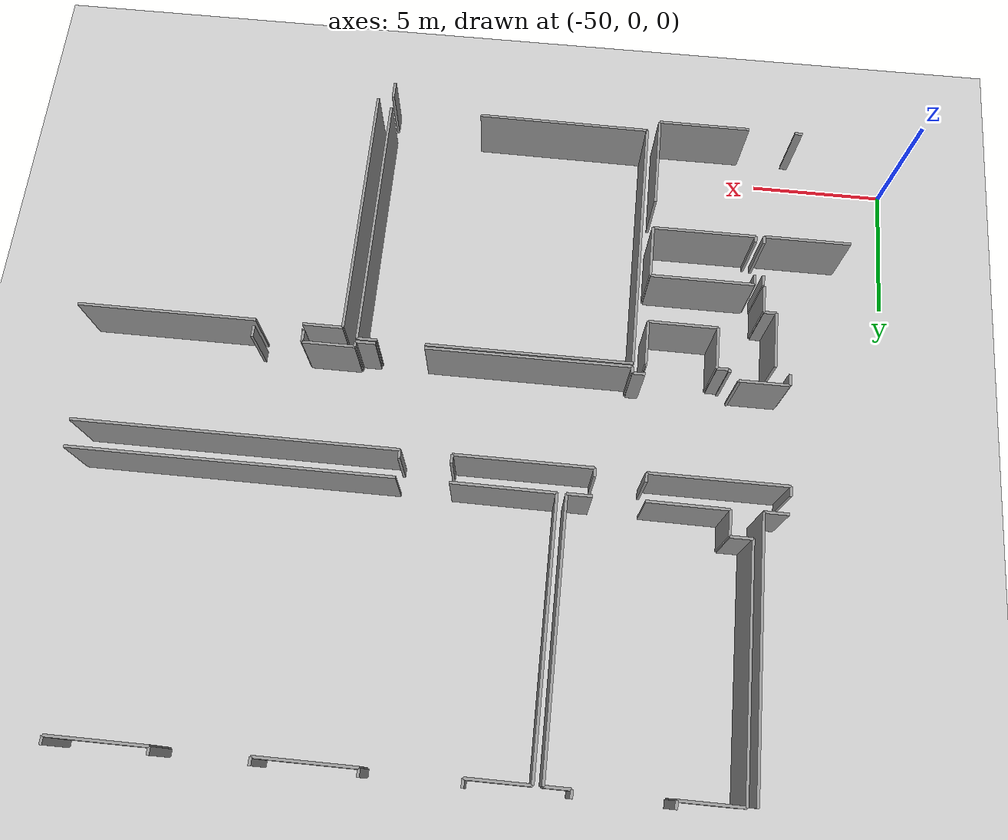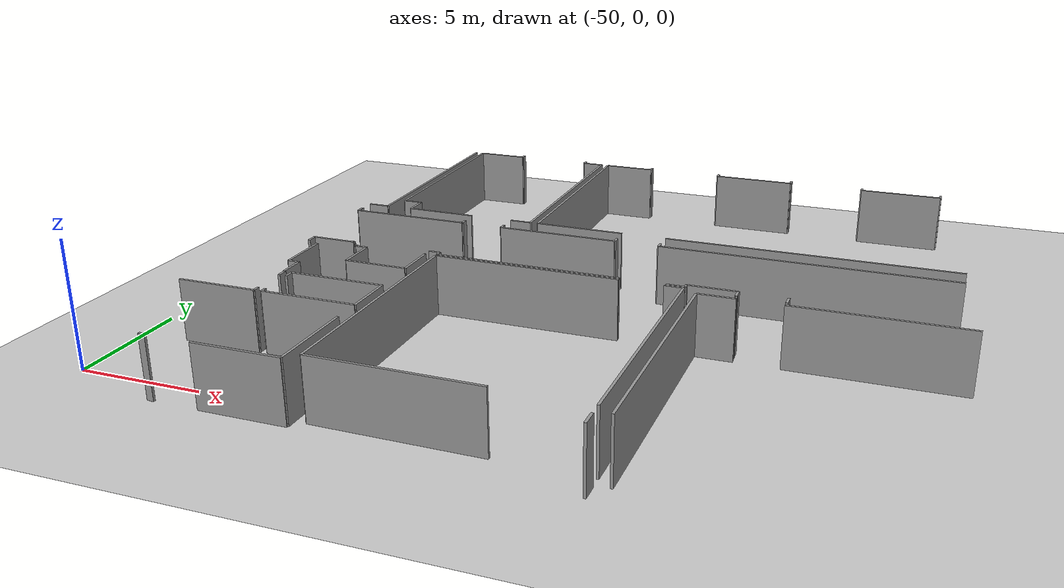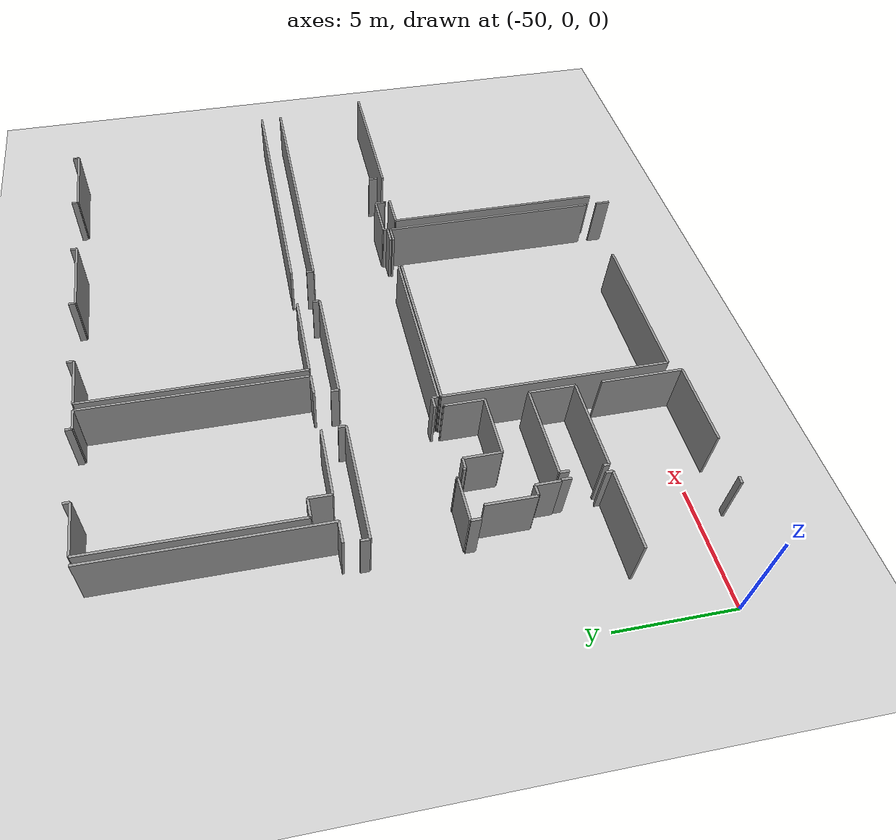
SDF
<sdf version="1.6">
 <world name="default">
  <model name="ground_plane">
   <static>1</static>
   <link name="link">
    <collision name="collision">
     <geometry><plane><normal>0 0 1</normal><size>100 100</size></plane></geometry>
     <surface><friction><ode><mu>100</mu><mu2>50</mu2></ode></friction></surface>
    </collision>
    <visual name="visual">
     <cast_shadows>0</cast_shadows>
     <geometry><plane><normal>0 0 1</normal><size>100 100</size></plane></geometry>
     <material>
      <script><uri>file://media/materials/scripts/gazebo.material</uri><name>Gazebo/Grey</name></script>
     </material>
    </visual>
   </link>
  </model>
  <model name="0510032196_A_40_1_104">
   <static>1</static>
   <link name="Wall_25">
    <collision name="Wall_25_Collision">
     <geometry><box><size>9.67553759341 0.1 2.5</size></box></geometry>
     <pose>4.83776879671 0 1.25 0 0 0</pose>
    </collision>
    <visual name="Wall_25_Visual">
     <pose>4.83776879671 0 1.25 0 0 0</pose>
     <geometry><box><size>9.67553759341 0.1 2.5</size></box></geometry>
     <material>
      <script><uri>file://media/materials/scripts/gazebo.material</uri><name>Gazebo/Grey</name></script>
      <ambient>1 1 1 1</ambient>
     </material>
    </visual>
    <pose>20.3478470845 -0.308576076458 0 0 0 -1.57079632679</pose>
   </link>
   <link name="Wall_26">
    <collision name="Wall_26_Collision">
     <geometry><box><size>0.88645722129 0.1 2.5</size></box></geometry>
     <pose>0.443228610645 0 1.25 0 0 0</pose>
    </collision>
    <visual name="Wall_26_Visual">
     <pose>0.443228610645 0 1.25 0 0 0</pose>
     <geometry><box><size>0.88645722129 0.1 2.5</size></box></geometry>
     <material>
      <script><uri>file://media/materials/scripts/gazebo.material</uri><name>Gazebo/Grey</name></script>
      <ambient>1 1 1 1</ambient>
     </material>
    </visual>
    <pose>20.3478470845 -9.98411366987 0 0 0 3.14159265359</pose>
   </link>
   <link name="Wall_28">
    <collision name="Wall_28_Collision">
     <geometry><box><size>0.950383813736 0.1 2.5</size></box></geometry>
     <pose>0.475191906868 0 1.25 0 0 0</pose>
    </collision>
    <visual name="Wall_28_Visual">
     <pose>0.475191906868 0 1.25 0 0 0</pose>
     <geometry><box><size>0.950383813736 0.1 2.5</size></box></geometry>
     <material>
      <script><uri>file://media/materials/scripts/gazebo.material</uri><name>Gazebo/Grey</name></script>
      <ambient>1 1 1 1</ambient>
     </material>
    </visual>
    <pose>21.4920441259 -9.95157846576 0 0 0 1.57079632679</pose>
   </link>
   <link name="Wall_29">
    <collision name="Wall_29_Collision">
     <geometry><box><size>0.800798129226 0.1 2.5</size></box></geometry>
     <pose>0.400399064613 0 1.25 0 0 0</pose>
    </collision>
    <visual name="Wall_29_Visual">
     <pose>0.400399064613 0 1.25 0 0 0</pose>
     <geometry><box><size>0.800798129226 0.1 2.5</size></box></geometry>
     <material>
      <script><uri>file://media/materials/scripts/gazebo.material</uri><name>Gazebo/Grey</name></script>
      <ambient>1 1 1 1</ambient>
     </material>
    </visual>
    <pose>21.4920441259 -9.00119465203 0 0 0 3.14159265359</pose>
   </link>
   <link name="Wall_30">
    <collision name="Wall_30_Collision">
     <geometry><box><size>8.70037110467 0.1 2.5</size></box></geometry>
     <pose>4.35018555234 0 1.25 0 0 0</pose>
    </collision>
    <visual name="Wall_30_Visual">
     <pose>4.35018555234 0 1.25 0 0 0</pose>
     <geometry><box><size>8.70037110467 0.1 2.5</size></box></geometry>
     <material>
      <script><uri>file://media/materials/scripts/gazebo.material</uri><name>Gazebo/Grey</name></script>
      <ambient>1 1 1 1</ambient>
     </material>
    </visual>
    <pose>20.6912459966 -9.00119465203 0 0 0 1.57079632679</pose>
   </link>
   <link name="Wall_31">
    <collision name="Wall_31_Collision">
     <geometry><box><size>2.23056784098 0.1 2.5</size></box></geometry>
     <pose>1.11528392049 0 1.25 0 0 0</pose>
    </collision>
    <visual name="Wall_31_Visual">
     <pose>1.11528392049 0 1.25 0 0 0</pose>
     <geometry><box><size>2.23056784098 0.1 2.5</size></box></geometry>
     <material>
      <script><uri>file://media/materials/scripts/gazebo.material</uri><name>Gazebo/Grey</name></script>
      <ambient>1 1 1 1</ambient>
     </material>
    </visual>
    <pose>20.6912459966 -0.300823547354 0 0 0 0.0</pose>
   </link>
   <link name="Wall_32">
    <collision name="Wall_32_Collision">
     <geometry><box><size>0.284301764018 0.1 2.5</size></box></geometry>
     <pose>0.142150882009 0 1.25 0 0 0</pose>
    </collision>
    <visual name="Wall_32_Visual">
     <pose>0.142150882009 0 1.25 0 0 0</pose>
     <geometry><box><size>0.284301764018 0.1 2.5</size></box></geometry>
     <material>
      <script><uri>file://media/materials/scripts/gazebo.material</uri><name>Gazebo/Grey</name></script>
      <ambient>1 1 1 1</ambient>
     </material>
    </visual>
    <pose>22.9218138376 -0.300823547354 0 0 0 1.57079632679</pose>
   </link>
   <link name="Wall_33">
    <collision name="Wall_33_Collision">
     <geometry><box><size>0.291164658635 0.1 2.5</size></box></geometry>
     <pose>0.145582329317 0 1.25 0 0 0</pose>
    </collision>
    <visual name="Wall_33_Visual">
     <pose>0.145582329317 0 1.25 0 0 0</pose>
     <geometry><box><size>0.291164658635 0.1 2.5</size></box></geometry>
     <material>
      <script><uri>file://media/materials/scripts/gazebo.material</uri><name>Gazebo/Grey</name></script>
      <ambient>1 1 1 1</ambient>
     </material>
    </visual>
    <pose>26.2543846271 -0.0165217833359 0 0 0 -1.57079632679</pose>
   </link>
   <link name="Wall_34">
    <collision name="Wall_34_Collision">
     <geometry><box><size>0.912129530781 0.1 2.5</size></box></geometry>
     <pose>0.456064765391 0 1.25 0 0 0</pose>
    </collision>
    <visual name="Wall_34_Visual">
     <pose>0.456064765391 0 1.25 0 0 0</pose>
     <geometry><box><size>0.912129530781 0.1 2.5</size></box></geometry>
     <material>
      <script><uri>file://media/materials/scripts/gazebo.material</uri><name>Gazebo/Grey</name></script>
      <ambient>1 1 1 1</ambient>
     </material>
    </visual>
    <pose>26.2543846271 -0.30768644197 0 0 0 0.0</pose>
   </link>
   <link name="Wall_35">
    <collision name="Wall_35_Collision">
     <geometry><box><size>9.66066798841 0.1 2.5</size></box></geometry>
     <pose>4.8303339942 0 1.25 0 0 0</pose>
    </collision>
    <visual name="Wall_35_Visual">
     <pose>4.8303339942 0 1.25 0 0 0</pose>
     <geometry><box><size>9.66066798841 0.1 2.5</size></box></geometry>
     <material>
      <script><uri>file://media/materials/scripts/gazebo.material</uri><name>Gazebo/Grey</name></script>
      <ambient>1 1 1 1</ambient>
     </material>
    </visual>
    <pose>27.1665141579 -0.30768644197 0 0 0 -1.57079632679</pose>
   </link>
   <link name="Wall_36">
    <collision name="Wall_36_Collision">
     <geometry><box><size>0.90221646078 0.1 2.5</size></box></geometry>
     <pose>0.45110823039 0 1.25 0 0 0</pose>
    </collision>
    <visual name="Wall_36_Visual">
     <pose>0.45110823039 0 1.25 0 0 0</pose>
     <geometry><box><size>0.90221646078 0.1 2.5</size></box></geometry>
     <material>
      <script><uri>file://media/materials/scripts/gazebo.material</uri><name>Gazebo/Grey</name></script>
      <ambient>1 1 1 1</ambient>
     </material>
    </visual>
    <pose>27.1665141579 -9.96835443038 0 0 0 3.14159265359</pose>
   </link>
   <link name="Wall_37">
    <collision name="Wall_37_Collision">
     <geometry><box><size>2.93635009335 0.1 2.5</size></box></geometry>
     <pose>1.46817504667 0 1.25 0 0 0</pose>
    </collision>
    <visual name="Wall_37_Visual">
     <pose>1.46817504667 0 1.25 0 0 0</pose>
     <geometry><box><size>2.93635009335 0.1 2.5</size></box></geometry>
     <material>
      <script><uri>file://media/materials/scripts/gazebo.material</uri><name>Gazebo/Grey</name></script>
      <ambient>1 1 1 1</ambient>
     </material>
    </visual>
    <pose>24.4283462966 -9.96835443038 0 0 0 3.13587941935</pose>
   </link>
   <link name="Wall_38">
    <collision name="Wall_38_Collision">
     <geometry><box><size>9.65393218443 0.1 2.5</size></box></geometry>
     <pose>4.82696609222 0 1.25 0 0 0</pose>
    </collision>
    <visual name="Wall_38_Visual">
     <pose>4.82696609222 0 1.25 0 0 0</pose>
     <geometry><box><size>9.65393218443 0.1 2.5</size></box></geometry>
     <material>
      <script><uri>file://media/materials/scripts/gazebo.material</uri><name>Gazebo/Grey</name></script>
      <ambient>1 1 1 1</ambient>
     </material>
    </visual>
    <pose>27.5039398099 -9.96263535153 0 0 0 1.57079632679</pose>
   </link>
   <link name="Wall_39">
    <collision name="Wall_39_Collision">
     <geometry><box><size>2.22523003406 0.1 2.5</size></box></geometry>
     <pose>1.11261501703 0 1.25 0 0 0</pose>
    </collision>
    <visual name="Wall_39_Visual">
     <pose>1.11261501703 0 1.25 0 0 0</pose>
     <geometry><box><size>2.22523003406 0.1 2.5</size></box></geometry>
     <material>
      <script><uri>file://media/materials/scripts/gazebo.material</uri><name>Gazebo/Grey</name></script>
      <ambient>1 1 1 1</ambient>
     </material>
    </visual>
    <pose>27.5039398099 -0.308703167099 0 0 0 0.0</pose>
   </link>
   <link name="Wall_40">
    <collision name="Wall_40_Collision">
     <geometry><box><size>0.305017538508 0.1 2.5</size></box></geometry>
     <pose>0.152508769254 0 1.25 0 0 0</pose>
    </collision>
    <visual name="Wall_40_Visual">
     <pose>0.152508769254 0 1.25 0 0 0</pose>
     <geometry><box><size>0.305017538508 0.1 2.5</size></box></geometry>
     <material>
      <script><uri>file://media/materials/scripts/gazebo.material</uri><name>Gazebo/Grey</name></script>
      <ambient>1 1 1 1</ambient>
     </material>
    </visual>
    <pose>29.7291698439 -0.308703167099 0 0 0 1.57079632679</pose>
   </link>
   <link name="Wall_41">
    <collision name="Wall_41_Collision">
     <geometry><box><size>0.297137918764 0.1 2.5</size></box></geometry>
     <pose>0.148568959382 0 1.25 0 0 0</pose>
    </collision>
    <visual name="Wall_41_Visual">
     <pose>0.148568959382 0 1.25 0 0 0</pose>
     <geometry><box><size>0.297137918764 0.1 2.5</size></box></geometry>
     <material>
      <script><uri>file://media/materials/scripts/gazebo.material</uri><name>Gazebo/Grey</name></script>
      <ambient>1 1 1 1</ambient>
     </material>
    </visual>
    <pose>33.0822022266 -0.00368562859031 0 0 0 -1.57079632679</pose>
   </link>
   <link name="Wall_42">
    <collision name="Wall_42_Collision">
     <geometry><box><size>3.50681205836 0.1 2.5</size></box></geometry>
     <pose>1.75340602918 0 1.25 0 0 0</pose>
    </collision>
    <visual name="Wall_42_Visual">
     <pose>1.75340602918 0 1.25 0 0 0</pose>
     <geometry><box><size>3.50681205836 0.1 2.5</size></box></geometry>
     <material>
      <script><uri>file://media/materials/scripts/gazebo.material</uri><name>Gazebo/Grey</name></script>
      <ambient>1 1 1 1</ambient>
     </material>
    </visual>
    <pose>33.0822022266 -0.300823547354 0 0 0 0.0</pose>
   </link>
   <link name="Wall_43">
    <collision name="Wall_43_Collision">
     <geometry><box><size>0.284301764018 0.1 2.5</size></box></geometry>
     <pose>0.142150882009 0 1.25 0 0 0</pose>
    </collision>
    <visual name="Wall_43_Visual">
     <pose>0.142150882009 0 1.25 0 0 0</pose>
     <geometry><box><size>0.284301764018 0.1 2.5</size></box></geometry>
     <material>
      <script><uri>file://media/materials/scripts/gazebo.material</uri><name>Gazebo/Grey</name></script>
      <ambient>1 1 1 1</ambient>
     </material>
    </visual>
    <pose>36.589014285 -0.300823547354 0 0 0 1.57079632679</pose>
   </link>
   <link name="Wall_44">
    <collision name="Wall_44_Collision">
     <geometry><box><size>0.282903766967 0.1 2.5</size></box></geometry>
     <pose>0.141451883483 0 1.25 0 0 0</pose>
    </collision>
    <visual name="Wall_44_Visual">
     <pose>0.141451883483 0 1.25 0 0 0</pose>
     <geometry><box><size>0.282903766967 0.1 2.5</size></box></geometry>
     <material>
      <script><uri>file://media/materials/scripts/gazebo.material</uri><name>Gazebo/Grey</name></script>
      <ambient>1 1 1 1</ambient>
     </material>
    </visual>
    <pose>39.8951502211 -0.0165217833359 0 0 0 -1.57079632679</pose>
   </link>
   <link name="Wall_45">
    <collision name="Wall_45_Collision">
     <geometry><box><size>3.50185552336 0.1 2.5</size></box></geometry>
     <pose>1.75092776168 0 1.25 0 0 0</pose>
    </collision>
    <visual name="Wall_45_Visual">
     <pose>1.75092776168 0 1.25 0 0 0</pose>
     <geometry><box><size>3.50185552336 0.1 2.5</size></box></geometry>
     <material>
      <script><uri>file://media/materials/scripts/gazebo.material</uri><name>Gazebo/Grey</name></script>
      <ambient>1 1 1 1</ambient>
     </material>
    </visual>
    <pose>39.8951502211 -0.299425550302 0 0 0 0.0</pose>
   </link>
   <link name="Wall_46">
    <collision name="Wall_46_Collision">
     <geometry><box><size>0.299425550302 0.1 2.5</size></box></geometry>
     <pose>0.149712775151 0 1.25 0 0 0</pose>
    </collision>
    <visual name="Wall_46_Visual">
     <pose>0.149712775151 0 1.25 0 0 0</pose>
     <geometry><box><size>0.299425550302 0.1 2.5</size></box></geometry>
     <material>
      <script><uri>file://media/materials/scripts/gazebo.material</uri><name>Gazebo/Grey</name></script>
      <ambient>1 1 1 1</ambient>
     </material>
    </visual>
    <pose>43.3970057445 -0.299425550302 0 0 0 1.57079632679</pose>
   </link>
   <link name="Wall_51">
    <collision name="Wall_51_Collision">
     <geometry><box><size>11.769228814 0.1 2.5</size></box></geometry>
     <pose>5.884614407 0 1.25 0 0 0</pose>
    </collision>
    <visual name="Wall_51_Visual">
     <pose>5.884614407 0 1.25 0 0 0</pose>
     <geometry><box><size>11.769228814 0.1 2.5</size></box></geometry>
     <material>
      <script><uri>file://media/materials/scripts/gazebo.material</uri><name>Gazebo/Grey</name></script>
      <ambient>1 1 1 1</ambient>
     </material>
    </visual>
    <pose>44.9082405572 -9.97941131615 0 0 0 3.14159265359</pose>
   </link>
   <link name="Wall_52">
    <collision name="Wall_52_Collision">
     <geometry><box><size>3.75556591186 0.1 2.5</size></box></geometry>
     <pose>1.87778295593 0 1.25 0 0 0</pose>
    </collision>
    <visual name="Wall_52_Visual">
     <pose>1.87778295593 0 1.25 0 0 0</pose>
     <geometry><box><size>3.75556591186 0.1 2.5</size></box></geometry>
     <material>
      <script><uri>file://media/materials/scripts/gazebo.material</uri><name>Gazebo/Grey</name></script>
      <ambient>1 1 1 1</ambient>
     </material>
    </visual>
    <pose>31.2594682528 -9.97941131615 0 0 0 3.13712567823</pose>
   </link>
   <link name="Wall_331">
    <collision name="Wall_331_Collision">
     <geometry><box><size>9.84024706421 0.1 2.5</size></box></geometry>
     <pose>4.9201235321 0 1.25 0 0 0</pose>
    </collision>
    <visual name="Wall_331_Visual">
     <pose>4.9201235321 0 1.25 0 0 0</pose>
     <geometry><box><size>9.84024706421 0.1 2.5</size></box></geometry>
     <material>
      <script><uri>file://media/materials/scripts/gazebo.material</uri><name>Gazebo/Grey</name></script>
      <ambient>1 1 1 1</ambient>
     </material>
    </visual>
    <pose>35.7814803518 -25.25773982 0 0 0 1.57079632679</pose>
   </link>
   <link name="Wall_332">
    <collision name="Wall_332_Collision">
     <geometry><box><size>1.47844542728 0.1 2.5</size></box></geometry>
     <pose>0.739222713639 0 1.25 0 0 0</pose>
    </collision>
    <visual name="Wall_332_Visual">
     <pose>0.739222713639 0 1.25 0 0 0</pose>
     <geometry><box><size>1.47844542728 0.1 2.5</size></box></geometry>
     <material>
      <script><uri>file://media/materials/scripts/gazebo.material</uri><name>Gazebo/Grey</name></script>
      <ambient>1 1 1 1</ambient>
     </material>
    </visual>
    <pose>35.7814803518 -15.4174927558 0 0 0 0.0</pose>
   </link>
   <link name="Wall_333">
    <collision name="Wall_333_Collision">
     <geometry><box><size>6.62701438666 0.1 2.5</size></box></geometry>
     <pose>3.31350719333 0 1.25 0 0 0</pose>
    </collision>
    <visual name="Wall_333_Visual">
     <pose>3.31350719333 0 1.25 0 0 0</pose>
     <geometry><box><size>6.62701438666 0.1 2.5</size></box></geometry>
     <material>
      <script><uri>file://media/materials/scripts/gazebo.material</uri><name>Gazebo/Grey</name></script>
      <ambient>1 1 1 1</ambient>
     </material>
    </visual>
    <pose>38.986325047 -15.4174927558 0 0 0 0.0</pose>
   </link>
   <link name="Wall_336">
    <collision name="Wall_336_Collision">
     <geometry><box><size>9.78725026689 0.1 2.5</size></box></geometry>
     <pose>4.89362513345 0 1.25 0 0 0</pose>
    </collision>
    <visual name="Wall_336_Visual">
     <pose>4.89362513345 0 1.25 0 0 0</pose>
     <geometry><box><size>9.78725026689 0.1 2.5</size></box></geometry>
     <material>
      <script><uri>file://media/materials/scripts/gazebo.material</uri><name>Gazebo/Grey</name></script>
      <ambient>1 1 1 1</ambient>
     </material>
    </visual>
    <pose>25.1636927457 -24.8288089065 0 0 0 1.57079632679</pose>
   </link>
   <link name="Wall_337">
    <collision name="Wall_337_Collision">
     <geometry><box><size>7.55198007219 0.1 2.5</size></box></geometry>
     <pose>3.77599003609 0 1.25 0 0 0</pose>
    </collision>
    <visual name="Wall_337_Visual">
     <pose>3.77599003609 0 1.25 0 0 0</pose>
     <geometry><box><size>7.55198007219 0.1 2.5</size></box></geometry>
     <material>
      <script><uri>file://media/materials/scripts/gazebo.material</uri><name>Gazebo/Grey</name></script>
      <ambient>1 1 1 1</ambient>
     </material>
    </visual>
    <pose>25.1636927457 -15.0415586396 0 0 0 0.0</pose>
   </link>
   <link name="Wall_338">
    <collision name="Wall_338_Collision">
     <geometry><box><size>0.741828071781 0.1 2.5</size></box></geometry>
     <pose>0.37091403589 0 1.25 0 0 0</pose>
    </collision>
    <visual name="Wall_338_Visual">
     <pose>0.37091403589 0 1.25 0 0 0</pose>
     <geometry><box><size>0.741828071781 0.1 2.5</size></box></geometry>
     <material>
      <script><uri>file://media/materials/scripts/gazebo.material</uri><name>Gazebo/Grey</name></script>
      <ambient>1 1 1 1</ambient>
     </material>
    </visual>
    <pose>34.4738447461 -15.0415586396 0 0 0 0.0</pose>
   </link>
   <link name="Wall_339">
    <collision name="Wall_339_Collision">
     <geometry><box><size>9.83884906715 0.1 2.5</size></box></geometry>
     <pose>4.91942453358 0 1.25 0 0 0</pose>
    </collision>
    <visual name="Wall_339_Visual">
     <pose>4.91942453358 0 1.25 0 0 0</pose>
     <geometry><box><size>9.83884906715 0.1 2.5</size></box></geometry>
     <material>
      <script><uri>file://media/materials/scripts/gazebo.material</uri><name>Gazebo/Grey</name></script>
      <ambient>1 1 1 1</ambient>
     </material>
    </visual>
    <pose>35.2156728179 -15.0415586396 0 0 0 -1.57079632679</pose>
   </link>
   <link name="Wall_340">
    <collision name="Wall_340_Collision">
     <geometry><box><size>6.52033532479 0.1 2.5</size></box></geometry>
     <pose>3.2601676624 0 1.25 0 0 0</pose>
    </collision>
    <visual name="Wall_340_Visual">
     <pose>3.2601676624 0 1.25 0 0 0</pose>
     <geometry><box><size>6.52033532479 0.1 2.5</size></box></geometry>
     <material>
      <script><uri>file://media/materials/scripts/gazebo.material</uri><name>Gazebo/Grey</name></script>
      <ambient>1 1 1 1</ambient>
     </material>
    </visual>
    <pose>31.6838239032 -24.8804077068 0 0 0 3.13367905156</pose>
   </link>
   <link name="Wall_348">
    <collision name="Wall_348_Collision">
     <geometry><box><size>3.52257129785 0.1 2.5</size></box></geometry>
     <pose>1.76128564892 0 1.25 0 0 0</pose>
    </collision>
    <visual name="Wall_348_Visual">
     <pose>1.76128564892 0 1.25 0 0 0</pose>
     <geometry><box><size>3.52257129785 0.1 2.5</size></box></geometry>
     <material>
      <script><uri>file://media/materials/scripts/gazebo.material</uri><name>Gazebo/Grey</name></script>
      <ambient>1 1 1 1</ambient>
     </material>
    </visual>
    <pose>24.6932031925 -21.7340247064 0 0 0 -1.57079632679</pose>
   </link>
   <link name="Wall_349">
    <collision name="Wall_349_Collision">
     <geometry><box><size>3.47910629861 0.1 2.5</size></box></geometry>
     <pose>1.73955314931 0 1.25 0 0 0</pose>
    </collision>
    <visual name="Wall_349_Visual">
     <pose>1.73955314931 0 1.25 0 0 0</pose>
     <geometry><box><size>3.47910629861 0.1 2.5</size></box></geometry>
     <material>
      <script><uri>file://media/materials/scripts/gazebo.material</uri><name>Gazebo/Grey</name></script>
      <ambient>1 1 1 1</ambient>
     </material>
    </visual>
    <pose>24.6932031925 -25.2565960043 0 0 0 3.14159265359</pose>
   </link>
   <link name="Wall_350">
    <collision name="Wall_350_Collision">
     <geometry><box><size>0.285931347567 0.1 2.5</size></box></geometry>
     <pose>0.142965673784 0 1.25 0 0 0</pose>
    </collision>
    <visual name="Wall_350_Visual">
     <pose>0.142965673784 0 1.25 0 0 0</pose>
     <geometry><box><size>0.285931347567 0.1 2.5</size></box></geometry>
     <material>
      <script><uri>file://media/materials/scripts/gazebo.material</uri><name>Gazebo/Grey</name></script>
      <ambient>1 1 1 1</ambient>
     </material>
    </visual>
    <pose>19.4401657262 -25.2565960043 0 0 0 3.04811587243</pose>
   </link>
   <link name="Wall_363">
    <collision name="Wall_363_Collision">
     <geometry><box><size>0.643459915612 0.1 2.5</size></box></geometry>
     <pose>0.321729957806 0 1.25 0 0 0</pose>
    </collision>
    <visual name="Wall_363_Visual">
     <pose>0.321729957806 0 1.25 0 0 0</pose>
     <geometry><box><size>0.643459915612 0.1 2.5</size></box></geometry>
     <material>
      <script><uri>file://media/materials/scripts/gazebo.material</uri><name>Gazebo/Grey</name></script>
      <ambient>1 1 1 1</ambient>
     </material>
    </visual>
    <pose>35.206776473 -25.3886431803 0 0 0 -1.57079632679</pose>
   </link>
   <link name="Wall_398">
    <collision name="Wall_398_Collision">
     <geometry><box><size>2.11262772609 0.1 2.5</size></box></geometry>
     <pose>1.05631386305 0 1.25 0 0 0</pose>
    </collision>
    <visual name="Wall_398_Visual">
     <pose>1.05631386305 0 1.25 0 0 0</pose>
     <geometry><box><size>2.11262772609 0.1 2.5</size></box></geometry>
     <material>
      <script><uri>file://media/materials/scripts/gazebo.material</uri><name>Gazebo/Grey</name></script>
      <ambient>1 1 1 1</ambient>
     </material>
    </visual>
    <pose>20.0341873824 -15.4065629607 0 0 0 -1.57079632679</pose>
   </link>
   <link name="Wall_399">
    <collision name="Wall_399_Collision">
     <geometry><box><size>0.467566468405 0.1 2.5</size></box></geometry>
     <pose>0.233783234203 0 1.25 0 0 0</pose>
    </collision>
    <visual name="Wall_399_Visual">
     <pose>0.233783234203 0 1.25 0 0 0</pose>
     <geometry><box><size>0.467566468405 0.1 2.5</size></box></geometry>
     <material>
      <script><uri>file://media/materials/scripts/gazebo.material</uri><name>Gazebo/Grey</name></script>
      <ambient>1 1 1 1</ambient>
     </material>
    </visual>
    <pose>20.0341873824 -17.5191906868 0 0 0 0.0</pose>
   </link>
   <link name="Wall_400">
    <collision name="Wall_400_Collision">
     <geometry><box><size>1.06057139952 0.1 2.5</size></box></geometry>
     <pose>0.530285699761 0 1.25 0 0 0</pose>
    </collision>
    <visual name="Wall_400_Visual">
     <pose>0.530285699761 0 1.25 0 0 0</pose>
     <geometry><box><size>1.06057139952 0.1 2.5</size></box></geometry>
     <material>
      <script><uri>file://media/materials/scripts/gazebo.material</uri><name>Gazebo/Grey</name></script>
      <ambient>1 1 1 1</ambient>
     </material>
    </visual>
    <pose>20.5017538508 -17.5191906868 0 0 0 -1.57079632679</pose>
   </link>
   <link name="Wall_401">
    <collision name="Wall_401_Collision">
     <geometry><box><size>0.0411773676987 0.1 2.5</size></box></geometry>
     <pose>0.0205886838493 0 1.25 0 0 0</pose>
    </collision>
    <visual name="Wall_401_Visual">
     <pose>0.0205886838493 0 1.25 0 0 0</pose>
     <geometry><box><size>0.0411773676987 0.1 2.5</size></box></geometry>
     <material>
      <script><uri>file://media/materials/scripts/gazebo.material</uri><name>Gazebo/Grey</name></script>
      <ambient>1 1 1 1</ambient>
     </material>
    </visual>
    <pose>20.5017538508 -18.5797620863 0 0 0 0.0</pose>
   </link>
   <link name="Wall_402">
    <collision name="Wall_402_Collision">
     <geometry><box><size>0.411265314422 0.1 2.5</size></box></geometry>
     <pose>0.205632657211 0 1.25 0 0 0</pose>
    </collision>
    <visual name="Wall_402_Visual">
     <pose>0.205632657211 0 1.25 0 0 0</pose>
     <geometry><box><size>0.411265314422 0.1 2.5</size></box></geometry>
     <material>
      <script><uri>file://media/materials/scripts/gazebo.material</uri><name>Gazebo/Grey</name></script>
      <ambient>1 1 1 1</ambient>
     </material>
    </visual>
    <pose>20.5429312185 -18.5797620863 0 0 0 -1.57079632679</pose>
   </link>
   <link name="Wall_403">
    <collision name="Wall_403_Collision">
     <geometry><box><size>0.283666310813 0.1 2.5</size></box></geometry>
     <pose>0.141833155406 0 1.25 0 0 0</pose>
    </collision>
    <visual name="Wall_403_Visual">
     <pose>0.141833155406 0 1.25 0 0 0</pose>
     <geometry><box><size>0.283666310813 0.1 2.5</size></box></geometry>
     <material>
      <script><uri>file://media/materials/scripts/gazebo.material</uri><name>Gazebo/Grey</name></script>
      <ambient>1 1 1 1</ambient>
     </material>
    </visual>
    <pose>20.5429312185 -20.3433989121 0 0 0 -1.57079632679</pose>
   </link>
   <link name="Wall_404">
    <collision name="Wall_404_Collision">
     <geometry><box><size>3.24246352499 0.1 2.5</size></box></geometry>
     <pose>1.62123176249 0 1.25 0 0 0</pose>
    </collision>
    <visual name="Wall_404_Visual">
     <pose>1.62123176249 0 1.25 0 0 0</pose>
     <geometry><box><size>3.24246352499 0.1 2.5</size></box></geometry>
     <material>
      <script><uri>file://media/materials/scripts/gazebo.material</uri><name>Gazebo/Grey</name></script>
      <ambient>1 1 1 1</ambient>
     </material>
    </visual>
    <pose>20.5429312185 -20.6270652229 0 0 0 3.14159265359</pose>
   </link>
   <link name="Wall_407">
    <collision name="Wall_407_Collision">
     <geometry><box><size>0.243632758884 0.1 2.5</size></box></geometry>
     <pose>0.121816379442 0 1.25 0 0 0</pose>
    </collision>
    <visual name="Wall_407_Visual">
     <pose>0.121816379442 0 1.25 0 0 0</pose>
     <geometry><box><size>0.243632758884 0.1 2.5</size></box></geometry>
     <material>
      <script><uri>file://media/materials/scripts/gazebo.material</uri><name>Gazebo/Grey</name></script>
      <ambient>1 1 1 1</ambient>
     </material>
    </visual>
    <pose>20.8605307305 -20.6057139952 0 0 0 1.57079632679</pose>
   </link>
   <link name="Wall_408">
    <collision name="Wall_408_Collision">
     <geometry><box><size>0.394108077881 0.1 2.5</size></box></geometry>
     <pose>0.197054038941 0 1.25 0 0 0</pose>
    </collision>
    <visual name="Wall_408_Visual">
     <pose>0.197054038941 0 1.25 0 0 0</pose>
     <geometry><box><size>0.394108077881 0.1 2.5</size></box></geometry>
     <material>
      <script><uri>file://media/materials/scripts/gazebo.material</uri><name>Gazebo/Grey</name></script>
      <ambient>1 1 1 1</ambient>
     </material>
    </visual>
    <pose>20.8605307305 -18.999796655 0 0 0 1.57079632679</pose>
   </link>
   <link name="Wall_409">
    <collision name="Wall_409_Collision">
     <geometry><box><size>3.85567586803 0.1 2.5</size></box></geometry>
     <pose>1.92783793401 0 1.25 0 0 0</pose>
    </collision>
    <visual name="Wall_409_Visual">
     <pose>1.92783793401 0 1.25 0 0 0</pose>
     <geometry><box><size>3.85567586803 0.1 2.5</size></box></geometry>
     <material>
      <script><uri>file://media/materials/scripts/gazebo.material</uri><name>Gazebo/Grey</name></script>
      <ambient>1 1 1 1</ambient>
     </material>
    </visual>
    <pose>20.8605307305 -18.6056885771 0 0 0 0.0</pose>
   </link>
   <link name="Wall_410">
    <collision name="Wall_410_Collision">
     <geometry><box><size>1.99697524274 0.1 2.5</size></box></geometry>
     <pose>0.998487621372 0 1.25 0 0 0</pose>
    </collision>
    <visual name="Wall_410_Visual">
     <pose>0.998487621372 0 1.25 0 0 0</pose>
     <geometry><box><size>1.99697524274 0.1 2.5</size></box></geometry>
     <material>
      <script><uri>file://media/materials/scripts/gazebo.material</uri><name>Gazebo/Grey</name></script>
      <ambient>1 1 1 1</ambient>
     </material>
    </visual>
    <pose>24.7162065985 -18.6056885771 0 0 0 -1.57079632679</pose>
   </link>
   <link name="Wall_411">
    <collision name="Wall_411_Collision">
     <geometry><box><size>3.85567707451 0.1 2.5</size></box></geometry>
     <pose>1.92783853725 0 1.25 0 0 0</pose>
    </collision>
    <visual name="Wall_411_Visual">
     <pose>1.92783853725 0 1.25 0 0 0</pose>
     <geometry><box><size>3.85567707451 0.1 2.5</size></box></geometry>
     <material>
      <script><uri>file://media/materials/scripts/gazebo.material</uri><name>Gazebo/Grey</name></script>
      <ambient>1 1 1 1</ambient>
     </material>
    </visual>
    <pose>24.7162065985 -20.6026638198 0 0 0 -3.14080156667</pose>
   </link>
   <link name="Wall_412">
    <collision name="Wall_412_Collision">
     <geometry><box><size>1.59435209191 0.1 2.5</size></box></geometry>
     <pose>0.797176045956 0 1.25 0 0 0</pose>
    </collision>
    <visual name="Wall_412_Visual">
     <pose>0.797176045956 0 1.25 0 0 0</pose>
     <geometry><box><size>1.59435209191 0.1 2.5</size></box></geometry>
     <material>
      <script><uri>file://media/materials/scripts/gazebo.material</uri><name>Gazebo/Grey</name></script>
      <ambient>1 1 1 1</ambient>
     </material>
    </visual>
    <pose>22.1386813075 -16.731355803 0 0 0 1.57079632679</pose>
   </link>
   <link name="Wall_413">
    <collision name="Wall_413_Collision">
     <geometry><box><size>0.468329012252 0.1 2.5</size></box></geometry>
     <pose>0.234164506126 0 1.25 0 0 0</pose>
    </collision>
    <visual name="Wall_413_Visual">
     <pose>0.234164506126 0 1.25 0 0 0</pose>
     <geometry><box><size>0.468329012252 0.1 2.5</size></box></geometry>
     <material>
      <script><uri>file://media/materials/scripts/gazebo.material</uri><name>Gazebo/Grey</name></script>
      <ambient>1 1 1 1</ambient>
     </material>
    </visual>
    <pose>22.1386813075 -15.137003711 0 0 0 3.14159265359</pose>
   </link>
   <link name="Wall_414">
    <collision name="Wall_414_Collision">
     <geometry><box><size>0.102689237965 0.1 2.5</size></box></geometry>
     <pose>0.0513446189823 0 1.25 0 0 0</pose>
    </collision>
    <visual name="Wall_414_Visual">
     <pose>0.0513446189823 0 1.25 0 0 0</pose>
     <geometry><box><size>0.102689237965 0.1 2.5</size></box></geometry>
     <material>
      <script><uri>file://media/materials/scripts/gazebo.material</uri><name>Gazebo/Grey</name></script>
      <ambient>1 1 1 1</ambient>
     </material>
    </visual>
    <pose>21.6703522953 -15.137003711 0 0 0 1.57079632679</pose>
   </link>
   <link name="Wall_415">
    <collision name="Wall_415_Collision">
     <geometry><box><size>0.0378730110315 0.1 2.5</size></box></geometry>
     <pose>0.0189365055157 0 1.25 0 0 0</pose>
    </collision>
    <visual name="Wall_415_Visual">
     <pose>0.0189365055157 0 1.25 0 0 0</pose>
     <geometry><box><size>0.0378730110315 0.1 2.5</size></box></geometry>
     <material>
      <script><uri>file://media/materials/scripts/gazebo.material</uri><name>Gazebo/Grey</name></script>
      <ambient>1 1 1 1</ambient>
     </material>
    </visual>
    <pose>24.659397082 -15.0343144731 0 0 0 0.0</pose>
   </link>
   <link name="Wall_416">
    <collision name="Wall_416_Collision">
     <geometry><box><size>1.7073356718 0.1 2.5</size></box></geometry>
     <pose>0.853667835901 0 1.25 0 0 0</pose>
    </collision>
    <visual name="Wall_416_Visual">
     <pose>0.853667835901 0 1.25 0 0 0</pose>
     <geometry><box><size>1.7073356718 0.1 2.5</size></box></geometry>
     <material>
      <script><uri>file://media/materials/scripts/gazebo.material</uri><name>Gazebo/Grey</name></script>
      <ambient>1 1 1 1</ambient>
     </material>
    </visual>
    <pose>24.697270093 -15.0343144731 0 0 0 -1.57079632679</pose>
   </link>
   <link name="Wall_417">
    <collision name="Wall_417_Collision">
     <geometry><box><size>2.5586094948 0.1 2.5</size></box></geometry>
     <pose>1.2793047474 0 1.25 0 0 0</pose>
    </collision>
    <visual name="Wall_417_Visual">
     <pose>1.2793047474 0 1.25 0 0 0</pose>
     <geometry><box><size>2.5586094948 0.1 2.5</size></box></geometry>
     <material>
      <script><uri>file://media/materials/scripts/gazebo.material</uri><name>Gazebo/Grey</name></script>
      <ambient>1 1 1 1</ambient>
     </material>
    </visual>
    <pose>24.697270093 -16.7416501449 0 0 0 3.13756923004</pose>
   </link>
   <link name="Wall_427">
    <collision name="Wall_427_Collision">
     <geometry><box><size>0.373011031468 0.1 2.5</size></box></geometry>
     <pose>0.186505515734 0 1.25 0 0 0</pose>
    </collision>
    <visual name="Wall_427_Visual">
     <pose>0.186505515734 0 1.25 0 0 0</pose>
     <geometry><box><size>0.373011031468 0.1 2.5</size></box></geometry>
     <material>
      <script><uri>file://media/materials/scripts/gazebo.material</uri><name>Gazebo/Grey</name></script>
      <ambient>1 1 1 1</ambient>
     </material>
    </visual>
    <pose>19.4338111941 -10.6162625184 0 0 0 -1.57079632679</pose>
   </link>
   <link name="Wall_428">
    <collision name="Wall_428_Collision">
     <geometry><box><size>5.01004016064 0.1 2.5</size></box></geometry>
     <pose>2.50502008032 0 1.25 0 0 0</pose>
    </collision>
    <visual name="Wall_428_Visual">
     <pose>2.50502008032 0 1.25 0 0 0</pose>
     <geometry><box><size>5.01004016064 0.1 2.5</size></box></geometry>
     <material>
      <script><uri>file://media/materials/scripts/gazebo.material</uri><name>Gazebo/Grey</name></script>
      <ambient>1 1 1 1</ambient>
     </material>
    </visual>
    <pose>19.4338111941 -10.9892735499 0 0 0 0.0</pose>
   </link>
   <link name="Wall_429">
    <collision name="Wall_429_Collision">
     <geometry><box><size>0.326241675563 0.1 2.5</size></box></geometry>
     <pose>0.163120837782 0 1.25 0 0 0</pose>
    </collision>
    <visual name="Wall_429_Visual">
     <pose>0.163120837782 0 1.25 0 0 0</pose>
     <geometry><box><size>0.326241675563 0.1 2.5</size></box></geometry>
     <material>
      <script><uri>file://media/materials/scripts/gazebo.material</uri><name>Gazebo/Grey</name></script>
      <ambient>1 1 1 1</ambient>
     </material>
    </visual>
    <pose>24.4438513548 -10.9892735499 0 0 0 1.57079632679</pose>
   </link>
   <link name="Wall_430">
    <collision name="Wall_430_Collision">
     <geometry><box><size>0.331452391846 0.1 2.5</size></box></geometry>
     <pose>0.165726195923 0 1.25 0 0 0</pose>
    </collision>
    <visual name="Wall_430_Visual">
     <pose>0.165726195923 0 1.25 0 0 0</pose>
     <geometry><box><size>0.331452391846 0.1 2.5</size></box></geometry>
     <material>
      <script><uri>file://media/materials/scripts/gazebo.material</uri><name>Gazebo/Grey</name></script>
      <ambient>1 1 1 1</ambient>
     </material>
    </visual>
    <pose>26.2489197296 -10.6630318743 0 0 0 -1.57079632679</pose>
   </link>
   <link name="Wall_431">
    <collision name="Wall_431_Collision">
     <geometry><box><size>5.01982614 0.1 2.5</size></box></geometry>
     <pose>2.50991307 0 1.25 0 0 0</pose>
    </collision>
    <visual name="Wall_431_Visual">
     <pose>2.50991307 0 1.25 0 0 0</pose>
     <geometry><box><size>5.01982614 0.1 2.5</size></box></geometry>
     <material>
      <script><uri>file://media/materials/scripts/gazebo.material</uri><name>Gazebo/Grey</name></script>
      <ambient>1 1 1 1</ambient>
     </material>
    </visual>
    <pose>26.2489197296 -10.9944842662 0 0 0 0.0</pose>
   </link>
   <link name="Wall_432">
    <collision name="Wall_432_Collision">
     <geometry><box><size>0.318489146459 0.1 2.5</size></box></geometry>
     <pose>0.15924457323 0 1.25 0 0 0</pose>
    </collision>
    <visual name="Wall_432_Visual">
     <pose>0.15924457323 0 1.25 0 0 0</pose>
     <geometry><box><size>0.318489146459 0.1 2.5</size></box></geometry>
     <material>
      <script><uri>file://media/materials/scripts/gazebo.material</uri><name>Gazebo/Grey</name></script>
      <ambient>1 1 1 1</ambient>
     </material>
    </visual>
    <pose>31.2687458696 -10.9944842662 0 0 0 1.57079632679</pose>
   </link>
   <link name="Wall_433">
    <collision name="Wall_433_Collision">
     <geometry><box><size>0.314549336587 0.1 2.5</size></box></geometry>
     <pose>0.157274668293 0 1.25 0 0 0</pose>
    </collision>
    <visual name="Wall_433_Visual">
     <pose>0.157274668293 0 1.25 0 0 0</pose>
     <geometry><box><size>0.314549336587 0.1 2.5</size></box></geometry>
     <material>
      <script><uri>file://media/materials/scripts/gazebo.material</uri><name>Gazebo/Grey</name></script>
      <ambient>1 1 1 1</ambient>
     </material>
    </visual>
    <pose>33.1190585125 -10.6759951197 0 0 0 -1.57079632679</pose>
   </link>
   <link name="Wall_434">
    <collision name="Wall_434_Collision">
     <geometry><box><size>11.803924559 0.1 2.5</size></box></geometry>
     <pose>5.9019622795 0 1.25 0 0 0</pose>
    </collision>
    <visual name="Wall_434_Visual">
     <pose>5.9019622795 0 1.25 0 0 0</pose>
     <geometry><box><size>11.803924559 0.1 2.5</size></box></geometry>
     <material>
      <script><uri>file://media/materials/scripts/gazebo.material</uri><name>Gazebo/Grey</name></script>
      <ambient>1 1 1 1</ambient>
     </material>
    </visual>
    <pose>33.1190585125 -10.9905444563 0 0 0 0.0</pose>
   </link>
   <link name="Wall_489">
    <collision name="Wall_489_Collision">
     <geometry><box><size>0.421813837629 0.1 2.5</size></box></geometry>
     <pose>0.210906918815 0 1.25 0 0 0</pose>
    </collision>
    <visual name="Wall_489_Visual">
     <pose>0.210906918815 0 1.25 0 0 0</pose>
     <geometry><box><size>0.421813837629 0.1 2.5</size></box></geometry>
     <material>
      <script><uri>file://media/materials/scripts/gazebo.material</uri><name>Gazebo/Grey</name></script>
      <ambient>1 1 1 1</ambient>
     </material>
    </visual>
    <pose>39.0186060698 -14.7385745514 0 0 0 -1.57079632679</pose>
   </link>
   <link name="Wall_490">
    <collision name="Wall_490_Collision">
     <geometry><box><size>0.0668496771898 0.1 2.5</size></box></geometry>
     <pose>0.0334248385949 0 1.25 0 0 0</pose>
    </collision>
    <visual name="Wall_490_Visual">
     <pose>0.0334248385949 0 1.25 0 0 0</pose>
     <geometry><box><size>0.0668496771898 0.1 2.5</size></box></geometry>
     <material>
      <script><uri>file://media/materials/scripts/gazebo.material</uri><name>Gazebo/Grey</name></script>
      <ambient>1 1 1 1</ambient>
     </material>
    </visual>
    <pose>37.2470896243 -15.160388389 0 0 0 3.14159265359</pose>
   </link>
   <link name="Wall_491">
    <collision name="Wall_491_Collision">
     <geometry><box><size>0.442910884043 0.1 2.5</size></box></geometry>
     <pose>0.221455442021 0 1.25 0 0 0</pose>
    </collision>
    <visual name="Wall_491_Visual">
     <pose>0.221455442021 0 1.25 0 0 0</pose>
     <geometry><box><size>0.442910884043 0.1 2.5</size></box></geometry>
     <material>
      <script><uri>file://media/materials/scripts/gazebo.material</uri><name>Gazebo/Grey</name></script>
      <ambient>1 1 1 1</ambient>
     </material>
    </visual>
    <pose>37.1802399471 -15.160388389 0 0 0 1.57079632679</pose>
   </link>
   <link name="Wall_492">
    <collision name="Wall_492_Collision">
     <geometry><box><size>1.94029281684 0.1 2.5</size></box></geometry>
     <pose>0.970146408418 0 1.25 0 0 0</pose>
    </collision>
    <visual name="Wall_492_Visual">
     <pose>0.970146408418 0 1.25 0 0 0</pose>
     <geometry><box><size>1.94029281684 0.1 2.5</size></box></geometry>
     <material>
      <script><uri>file://media/materials/scripts/gazebo.material</uri><name>Gazebo/Grey</name></script>
      <ambient>1 1 1 1</ambient>
     </material>
    </visual>
    <pose>37.1802399471 -14.717477505 0 0 0 3.14159265359</pose>
   </link>
   <link name="Wall_493">
    <collision name="Wall_493_Collision">
     <geometry><box><size>0.196100859133 0.1 2.5</size></box></geometry>
     <pose>0.0980504295664 0 1.25 0 0 0</pose>
    </collision>
    <visual name="Wall_493_Visual">
     <pose>0.0980504295664 0 1.25 0 0 0</pose>
     <geometry><box><size>0.196100859133 0.1 2.5</size></box></geometry>
     <material>
      <script><uri>file://media/materials/scripts/gazebo.material</uri><name>Gazebo/Grey</name></script>
      <ambient>1 1 1 1</ambient>
     </material>
    </visual>
    <pose>35.2399471303 -14.717477505 0 0 0 -1.57079632679</pose>
   </link>
   <link name="Wall_494">
    <collision name="Wall_494_Collision">
     <geometry><box><size>0.729373188958 0.1 2.5</size></box></geometry>
     <pose>0.364686594479 0 1.25 0 0 0</pose>
    </collision>
    <visual name="Wall_494_Visual">
     <pose>0.364686594479 0 1.25 0 0 0</pose>
     <geometry><box><size>0.729373188958 0.1 2.5</size></box></geometry>
     <material>
      <script><uri>file://media/materials/scripts/gazebo.material</uri><name>Gazebo/Grey</name></script>
      <ambient>1 1 1 1</ambient>
     </material>
    </visual>
    <pose>35.2399471303 -14.9135783641 0 0 0 3.14159265359</pose>
   </link>
   <link name="Wall_495">
    <collision name="Wall_495_Collision">
     <geometry><box><size>7.54270245539 0.1 2.5</size></box></geometry>
     <pose>3.7713512277 0 1.25 0 0 0</pose>
    </collision>
    <visual name="Wall_495_Visual">
     <pose>3.7713512277 0 1.25 0 0 0</pose>
     <geometry><box><size>7.54270245539 0.1 2.5</size></box></geometry>
     <material>
      <script><uri>file://media/materials/scripts/gazebo.material</uri><name>Gazebo/Grey</name></script>
      <ambient>1 1 1 1</ambient>
     </material>
    </visual>
    <pose>32.7093182858 -14.9135783641 0 0 0 3.14159265359</pose>
   </link>
   <link name="Wall_496">
    <collision name="Wall_496_Collision">
     <geometry><box><size>0.243632758884 0.1 2.5</size></box></geometry>
     <pose>0.121816379442 0 1.25 0 0 0</pose>
    </collision>
    <visual name="Wall_496_Visual">
     <pose>0.121816379442 0 1.25 0 0 0</pose>
     <geometry><box><size>0.243632758884 0.1 2.5</size></box></geometry>
     <material>
      <script><uri>file://media/materials/scripts/gazebo.material</uri><name>Gazebo/Grey</name></script>
      <ambient>1 1 1 1</ambient>
     </material>
    </visual>
    <pose>25.1666158304 -14.9135783641 0 0 0 1.57079632679</pose>
   </link>
   <link name="Wall_497">
    <collision name="Wall_497_Collision">
     <geometry><box><size>0.470235371867 0.1 2.5</size></box></geometry>
     <pose>0.235117685934 0 1.25 0 0 0</pose>
    </collision>
    <visual name="Wall_497_Visual">
     <pose>0.235117685934 0 1.25 0 0 0</pose>
     <geometry><box><size>0.470235371867 0.1 2.5</size></box></geometry>
     <material>
      <script><uri>file://media/materials/scripts/gazebo.material</uri><name>Gazebo/Grey</name></script>
      <ambient>1 1 1 1</ambient>
     </material>
    </visual>
    <pose>25.1666158304 -14.6699456052 0 0 0 3.14159265359</pose>
   </link>
   <link name="Wall_498">
    <collision name="Wall_498_Collision">
     <geometry><box><size>0.0690102180875 0.1 2.5</size></box></geometry>
     <pose>0.0345051090438 0 1.25 0 0 0</pose>
    </collision>
    <visual name="Wall_498_Visual">
     <pose>0.0345051090438 0 1.25 0 0 0</pose>
     <geometry><box><size>0.0690102180875 0.1 2.5</size></box></geometry>
     <material>
      <script><uri>file://media/materials/scripts/gazebo.material</uri><name>Gazebo/Grey</name></script>
      <ambient>1 1 1 1</ambient>
     </material>
    </visual>
    <pose>21.329495196 -14.6699456052 0 0 0 -1.57079632679</pose>
   </link>
   <link name="Wall_499">
    <collision name="Wall_499_Collision">
     <geometry><box><size>1.83112195618 0.1 2.5</size></box></geometry>
     <pose>0.91556097809 0 1.25 0 0 0</pose>
    </collision>
    <visual name="Wall_499_Visual">
     <pose>0.91556097809 0 1.25 0 0 0</pose>
     <geometry><box><size>1.83112195618 0.1 2.5</size></box></geometry>
     <material>
      <script><uri>file://media/materials/scripts/gazebo.material</uri><name>Gazebo/Grey</name></script>
      <ambient>1 1 1 1</ambient>
     </material>
    </visual>
    <pose>21.329495196 -14.7389558233 0 0 0 3.14159265359</pose>
   </link>
   <link name="Wall_500">
    <collision name="Wall_500_Collision">
     <geometry><box><size>0.426643281989 0.1 2.5</size></box></geometry>
     <pose>0.213321640994 0 1.25 0 0 0</pose>
    </collision>
    <visual name="Wall_500_Visual">
     <pose>0.213321640994 0 1.25 0 0 0</pose>
     <geometry><box><size>0.426643281989 0.1 2.5</size></box></geometry>
     <material>
      <script><uri>file://media/materials/scripts/gazebo.material</uri><name>Gazebo/Grey</name></script>
      <ambient>1 1 1 1</ambient>
     </material>
    </visual>
    <pose>19.4983732398 -14.7389558233 0 0 0 -1.57079632679</pose>
   </link>
   <pose>-65.45 24.1679019877 0 0 0 0</pose>
  </model>
 </world>
</sdf>
